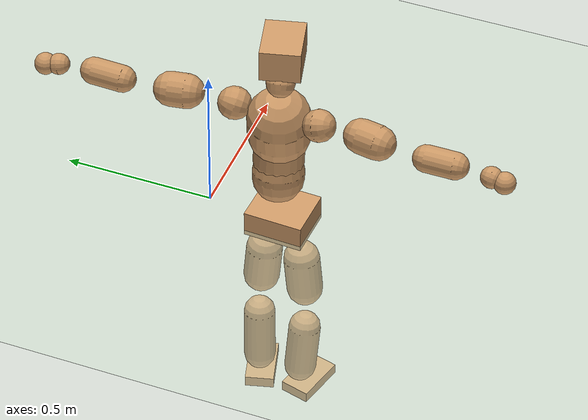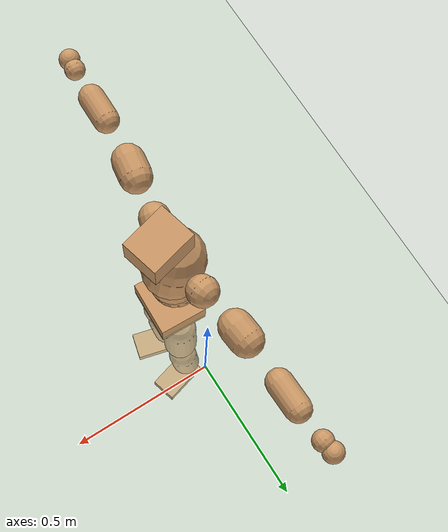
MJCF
<mujoco model="humanoid">
  <compiler coordinate="local" angle="radian"/>
  <default>
    <joint damping="0.0" armature="0.01" stiffness="0.0" limited="true"/>
    <geom conaffinity="1" condim="3" contype="7" margin="0.001" rgba="0.8 0.6 .4 1"/>
  </default>
  <asset>
    <texture type="skybox" builtin="gradient" rgb1=".4 .5 .6" rgb2="0 0 0" width="100" height="100"/>
    <texture builtin="flat" height="1278" mark="cross" markrgb="1 1 1" name="texgeom" random="0.01" rgb1="0.8 0.6 0.4" rgb2="0.8 0.6 0.4" type="cube" width="127"/>
    <texture builtin="checker" height="100" name="texplane" rgb1="0 0 0" rgb2="0.8 0.8 0.8" type="2d" width="100"/>
    <material name="MatPlane" reflectance="0.5" shininess="1" specular="1" texrepeat="60 60" texture="texplane"/>
    <material name="geom" texture="texgeom" texuniform="true"/>
  </asset>
  <worldbody>
    <light cutoff="100" diffuse="1 1 1" dir="-0 0 -1.3" directional="true" exponent="1" pos="0 0 1.3" specular=".1 .1 .1"/>
    <geom conaffinity="1" condim="3" name="floor" pos="0 0 0" rgba="0.8 0.9 0.8 1" size="100 100 .2" type="plane" material="MatPlane"/>
    <body name="Pelvis" pos="-0.0064 -0.2569 0.0334">
      <freejoint name="Pelvis"/>
      <geom type="box" contype="1" conaffinity="1" density="5359.375002" pos="-0.0103 0.0004 -0.0073" size="0.0847 0.0976 0.0445" quat="0.9998 0.0000 0.0000 -0.0188" name="Pelvis"/>
      <body name="L_Hip" pos="-0.0119 0.0546 -0.0775">
        <joint name="L_Hip_x" type="hinge" pos="0 0 0" axis="1 0 0" stiffness="1600" damping="160" armature="0.02" range="-180.0000 180.0000"/>
        <joint name="L_Hip_y" type="hinge" pos="0 0 0" axis="0 1 0" stiffness="1600" damping="160" armature="0.02" range="-180.0000 180.0000"/>
        <joint name="L_Hip_z" type="hinge" pos="0 0 0" axis="0 0 1" stiffness="1600" damping="160" armature="0.02" range="-180.0000 180.0000"/>
        <geom type="capsule" contype="1" conaffinity="1" density="2040.816327" size="0.0594" fromto="0.0040 0.0089 -0.0888 0.0100 0.0221 -0.2199" name="L_Hip"/>
        <body name="L_Knee" pos="0.014 0.0311 -0.3088">
          <joint name="L_Knee_x" type="hinge" pos="0 0 0" axis="1 0 0" stiffness="1600" damping="160" armature="0.02" range="-180.0000 180.0000"/>
          <joint name="L_Knee_y" type="hinge" pos="0 0 0" axis="0 1 0" stiffness="1600" damping="160" armature="0.02" range="-180.0000 180.0000"/>
          <joint name="L_Knee_z" type="hinge" pos="0 0 0" axis="0 0 1" stiffness="1600" damping="160" armature="0.02" range="-180.0000 180.0000"/>
          <geom type="capsule" contype="1" conaffinity="1" density="1234.567901" size="0.0522" fromto="-0.0082 -0.0034 -0.0817 -0.0260 -0.0108 -0.2605" name="L_Knee"/>
          <body name="L_Ankle" pos="-0.0342 -0.0142 -0.3422">
            <joint name="L_Ankle_x" type="hinge" pos="0 0 0" axis="1 0 0" stiffness="1600" damping="160" armature="0.02" range="-180.0000 180.0000"/>
            <joint name="L_Ankle_y" type="hinge" pos="0 0 0" axis="0 1 0" stiffness="1600" damping="160" armature="0.02" range="-180.0000 180.0000"/>
            <joint name="L_Ankle_z" type="hinge" pos="0 0 0" axis="0 0 1" stiffness="1600" damping="160" armature="0.02" range="-180.0000 180.0000"/>
            <geom type="box" contype="1" conaffinity="1" density="999.999961" pos="0.0560 0.0156 -0.0257" size="0.0847 0.0482 0.0195" quat="0.9908 0.0000 0.0000 0.1353" name="L_Ankle"/>
            <body name="L_Toe" pos="0.1121 0.0312 -0.0514">
              <joint name="L_Toe_x" type="hinge" pos="0 0 0" axis="1 0 0" stiffness="1000" damping="100" armature="0.02" range="-180.0000 180.0000"/>
              <joint name="L_Toe_y" type="hinge" pos="0 0 0" axis="0 1 0" stiffness="1000" damping="100" armature="0.02" range="-180.0000 180.0000"/>
              <joint name="L_Toe_z" type="hinge" pos="0 0 0" axis="0 0 1" stiffness="1000" damping="100" armature="0.02" range="-180.0000 180.0000"/>
              <geom type="box" contype="1" conaffinity="1" density="8534915.479226" pos="0.0000 0.0000 0.0246" size="0.001 0.0024 0.0009" quat="0.9900 0.0000 0.0000 0.1411" name="L_Toe"/>
            </body>
          </body>
        </body>
      </body>
      <body name="R_Hip" pos="-0.0067 -0.0559 -0.0855">
        <joint name="R_Hip_x" type="hinge" pos="0 0 0" axis="1 0 0" stiffness="1600" damping="160" armature="0.02" range="-180.0000 180.0000"/>
        <joint name="R_Hip_y" type="hinge" pos="0 0 0" axis="0 1 0" stiffness="1600" damping="160" armature="0.02" range="-180.0000 180.0000"/>
        <joint name="R_Hip_z" type="hinge" pos="0 0 0" axis="0 0 1" stiffness="1600" damping="160" armature="0.02" range="-180.0000 180.0000"/>
        <geom type="capsule" contype="1" conaffinity="1" density="2040.816327" size="0.059" fromto="0.0005 -0.0082 -0.0886 0.0013 -0.0202 -0.2185" name="R_Hip"/>
        <body name="R_Knee" pos="0.0018 -0.0284 -0.3071">
          <joint name="R_Knee_x" type="hinge" pos="0 0 0" axis="1 0 0" stiffness="1600" damping="160" armature="0.02" range="-180.0000 180.0000"/>
          <joint name="R_Knee_y" type="hinge" pos="0 0 0" axis="0 1 0" stiffness="1600" damping="160" armature="0.02" range="-180.0000 180.0000"/>
          <joint name="R_Knee_z" type="hinge" pos="0 0 0" axis="0 0 1" stiffness="1600" damping="160" armature="0.02" range="-180.0000 180.0000"/>
          <geom type="capsule" contype="1" conaffinity="1" density="1234.567901" size="0.0525" fromto="-0.0079 0.0041 -0.0820 -0.0242 0.0126 -0.2519" name="R_Knee"/>
          <body name="R_Ankle" pos="-0.0321 0.0167 -0.334">
            <joint name="R_Ankle_x" type="hinge" pos="0 0 0" axis="1 0 0" stiffness="1600" damping="160" armature="0.02" range="-180.0000 180.0000"/>
            <joint name="R_Ankle_y" type="hinge" pos="0 0 0" axis="0 1 0" stiffness="1600" damping="160" armature="0.02" range="-180.0000 180.0000"/>
            <joint name="R_Ankle_z" type="hinge" pos="0 0 0" axis="0 0 1" stiffness="1600" damping="160" armature="0.02" range="-180.0000 180.0000"/>
            <geom type="box" contype="1" conaffinity="1" density="999.999932" pos="0.0600 -0.0152 -0.0248" size="0.084 0.0502 0.0191" quat="0.9923 0.0000 0.0000 -0.1241" name="R_Ankle"/>
            <body name="R_Toe" pos="0.1199 -0.0305 -0.0497">
              <joint name="R_Toe_x" type="hinge" pos="0 0 0" axis="1 0 0" stiffness="1000" damping="100" armature="0.02" range="-180.0000 180.0000"/>
              <joint name="R_Toe_y" type="hinge" pos="0 0 0" axis="0 1 0" stiffness="1000" damping="100" armature="0.02" range="-180.0000 180.0000"/>
              <joint name="R_Toe_z" type="hinge" pos="0 0 0" axis="0 0 1" stiffness="1000" damping="100" armature="0.02" range="-180.0000 180.0000"/>
              <geom type="box" contype="1" conaffinity="1" density="8101662.17668" pos="0.0000 0.0000 0.0257" size="0.001 0.0025 0.001" quat="0.9934 0.0000 0.0000 -0.1144" name="R_Toe"/>
            </body>
          </body>
        </body>
      </body>
      <body name="Torso" pos="-0.0435 0.0036 0.1195">
        <joint name="Torso_x" type="hinge" pos="0 0 0" axis="1 0 0" stiffness="2000" damping="200" armature="0.02" range="-180.0000 180.0000"/>
        <joint name="Torso_y" type="hinge" pos="0 0 0" axis="0 1 0" stiffness="2000" damping="200" armature="0.02" range="-180.0000 180.0000"/>
        <joint name="Torso_z" type="hinge" pos="0 0 0" axis="0 0 1" stiffness="2000" damping="200" armature="0.02" range="-180.0000 180.0000"/>
        <geom type="capsule" contype="1" conaffinity="1" density="2040.816327" size="0.0839" fromto="0.0135 0.0038 0.0827 0.0098 0.0028 0.0600" name="Torso"/>
        <body name="Spine" pos="0.0233 0.0066 0.1427">
          <joint name="Spine_x" type="hinge" pos="0 0 0" axis="1 0 0" stiffness="2000" damping="200" armature="0.02" range="-180.0000 180.0000"/>
          <joint name="Spine_y" type="hinge" pos="0 0 0" axis="0 1 0" stiffness="2000" damping="200" armature="0.02" range="-180.0000 180.0000"/>
          <joint name="Spine_z" type="hinge" pos="0 0 0" axis="0 0 1" stiffness="2000" damping="200" armature="0.02" range="-180.0000 180.0000"/>
          <geom type="capsule" contype="1" conaffinity="1" density="2040.816327" size="0.0821" fromto="0.0075 -0.0005 0.0818 -0.0022 0.0001 -0.0239" name="Spine"/>
          <body name="Chest" pos="0.0053 -0.0004 0.0579">
            <joint name="Chest_x" type="hinge" pos="0 0 0" axis="1 0 0" stiffness="2000" damping="200" armature="0.02" range="-180.0000 180.0000"/>
            <joint name="Chest_y" type="hinge" pos="0 0 0" axis="0 1 0" stiffness="2000" damping="200" armature="0.02" range="-180.0000 180.0000"/>
            <joint name="Chest_z" type="hinge" pos="0 0 0" axis="0 0 1" stiffness="2000" damping="200" armature="0.02" range="-180.0000 180.0000"/>
            <geom type="capsule" contype="1" conaffinity="1" density="2040.816327" size="0.1024" fromto="-0.0197 -0.0057 0.1003 -0.0070 -0.0020 0.0357" name="Chest"/>
            <body name="Neck" pos="-0.0358 -0.0126 0.1978">
              <joint name="Neck_x" type="hinge" pos="0 0 0" axis="1 0 0" stiffness="1000" damping="100" armature="0.02" range="-180.0000 180.0000"/>
              <joint name="Neck_y" type="hinge" pos="0 0 0" axis="0 1 0" stiffness="1000" damping="100" armature="0.02" range="-180.0000 180.0000"/>
              <joint name="Neck_z" type="hinge" pos="0 0 0" axis="0 0 1" stiffness="1000" damping="100" armature="0.02" range="-180.0000 180.0000"/>
              <geom type="capsule" contype="1" conaffinity="1" density="1000" size="0.0459" fromto="0.0234 0.0053 0.0402 0.0244 0.0055 0.0419" name="Neck"/>
              <body name="Head" pos="0.0478 0.0108 0.0821">
                <joint name="Head_x" type="hinge" pos="0 0 0" axis="1 0 0" stiffness="1000" damping="100" armature="0.02" range="-180.0000 180.0000"/>
                <joint name="Head_y" type="hinge" pos="0 0 0" axis="0 1 0" stiffness="1000" damping="100" armature="0.02" range="-180.0000 180.0000"/>
                <joint name="Head_z" type="hinge" pos="0 0 0" axis="0 0 1" stiffness="1000" damping="100" armature="0.02" range="-180.0000 180.0000"/>
                <geom type="box" contype="1" conaffinity="1" density="2249.999957" pos="0.0249 0.0064 0.0421" size="0.0813 0.0643 0.0532" quat="0.9921 0.0000 0.0000 0.1257" name="Head"/>
              </body>
            </body>
            <body name="L_Thorax" pos="-0.0188 0.0728 0.1068">
              <joint name="L_Thorax_x" type="hinge" pos="0 0 0" axis="1 0 0" stiffness="1000" damping="100" armature="0.02" range="-180.0000 180.0000"/>
              <joint name="L_Thorax_y" type="hinge" pos="0 0 0" axis="0 1 0" stiffness="1000" damping="100" armature="0.02" range="-180.0000 180.0000"/>
              <joint name="L_Thorax_z" type="hinge" pos="0 0 0" axis="0 0 1" stiffness="1000" damping="100" armature="0.02" range="-180.0000 180.0000"/>
              <geom type="capsule" contype="1" conaffinity="1" density="1000" size="0.0531" fromto="-0.0114 0.0639 0.0207 -0.0118 0.0658 0.0213" name="L_Thorax"/>
              <body name="L_Shoulder" pos="-0.0232 0.1298 0.042">
                <joint name="L_Shoulder_x" type="hinge" pos="0 0 0" axis="1 0 0" stiffness="1000" damping="100" armature="0.02" range="-720.0000 720.0000"/>
                <joint name="L_Shoulder_y" type="hinge" pos="0 0 0" axis="0 1 0" stiffness="1000" damping="100" armature="0.02" range="-720.0000 720.0000"/>
                <joint name="L_Shoulder_z" type="hinge" pos="0 0 0" axis="0 0 1" stiffness="1000" damping="100" armature="0.02" range="-720.0000 720.0000"/>
                <geom type="capsule" contype="1" conaffinity="1" density="1000" size="0.0555" fromto="-0.0094 0.0849 -0.0038 -0.0152 0.1372 -0.0061" name="L_Shoulder"/>
                <body name="L_Elbow" pos="-0.0246 0.2221 -0.0099">
                  <joint name="L_Elbow_x" type="hinge" pos="0 0 0" axis="1 0 0" stiffness="1000" damping="100" armature="0.02" range="-720.0000 720.0000"/>
                  <joint name="L_Elbow_y" type="hinge" pos="0 0 0" axis="0 1 0" stiffness="1000" damping="100" armature="0.02" range="-720.0000 720.0000"/>
                  <joint name="L_Elbow_z" type="hinge" pos="0 0 0" axis="0 0 1" stiffness="1000" damping="100" armature="0.02" range="-720.0000 720.0000"/>
                  <geom type="capsule" contype="1" conaffinity="1" density="1000" size="0.0435" fromto="-0.0016 0.0734 0.0039 -0.0036 0.1695 0.0090" name="L_Elbow"/>
                  <body name="L_Wrist" pos="-0.0051 0.2429 0.013">
                    <joint name="L_Wrist_x" type="hinge" pos="0 0 0" axis="1 0 0" stiffness="600" damping="60" armature="0.02" range="-180.0000 180.0000"/>
                    <joint name="L_Wrist_y" type="hinge" pos="0 0 0" axis="0 1 0" stiffness="600" damping="60" armature="0.02" range="-180.0000 180.0000"/>
                    <joint name="L_Wrist_z" type="hinge" pos="0 0 0" axis="0 0 1" stiffness="600" damping="60" armature="0.02" range="-180.0000 180.0000"/>
                    <geom type="capsule" contype="1" conaffinity="1" density="1000" size="0.0341" fromto="-0.0073 0.0417 -0.0052 -0.0076 0.0437 -0.0055" name="L_Wrist"/>
                    <body name="L_Hand" pos="-0.0149 0.0854 -0.0107">
                      <joint name="L_Hand_x" type="hinge" pos="0 0 0" axis="1 0 0" stiffness="600" damping="60" armature="0.02" range="-180.0000 180.0000"/>
                      <joint name="L_Hand_y" type="hinge" pos="0 0 0" axis="0 1 0" stiffness="600" damping="60" armature="0.02" range="-180.0000 180.0000"/>
                      <joint name="L_Hand_z" type="hinge" pos="0 0 0" axis="0 0 1" stiffness="600" damping="60" armature="0.02" range="-180.0000 180.0000"/>
                      <geom type="sphere" contype="1" conaffinity="1" density="1000" size="0.0352" pos="0.0000 0.0000 0.0000" name="L_Hand"/>
                    </body>
                  </body>
                </body>
              </body>
            </body>
            <body name="R_Thorax" pos="-0.0256 -0.0836 0.1034">
              <joint name="R_Thorax_x" type="hinge" pos="0 0 0" axis="1 0 0" stiffness="1000" damping="100" armature="0.02" range="-180.0000 180.0000"/>
              <joint name="R_Thorax_y" type="hinge" pos="0 0 0" axis="0 1 0" stiffness="1000" damping="100" armature="0.02" range="-180.0000 180.0000"/>
              <joint name="R_Thorax_z" type="hinge" pos="0 0 0" axis="0 0 1" stiffness="1000" damping="100" armature="0.02" range="-180.0000 180.0000"/>
              <geom type="capsule" contype="1" conaffinity="1" density="1000" size="0.0522" fromto="-0.0062 -0.0576 0.0203 -0.0064 -0.0595 0.0210" name="R_Thorax"/>
              <body name="R_Shoulder" pos="-0.0127 -0.1171 0.0413">
                <joint name="R_Shoulder_x" type="hinge" pos="0 0 0" axis="1 0 0" stiffness="1000" damping="100" armature="0.02" range="-720.0000 720.0000"/>
                <joint name="R_Shoulder_y" type="hinge" pos="0 0 0" axis="0 1 0" stiffness="1000" damping="100" armature="0.02" range="-720.0000 720.0000"/>
                <joint name="R_Shoulder_z" type="hinge" pos="0 0 0" axis="0 0 1" stiffness="1000" damping="100" armature="0.02" range="-720.0000 720.0000"/>
                <geom type="capsule" contype="1" conaffinity="1" density="1000" size="0.055" fromto="-0.0125 -0.0841 -0.0013 -0.0216 -0.1445 -0.0022" name="R_Shoulder"/>
                <body name="R_Elbow" pos="-0.0341 -0.2286 -0.0035">
                  <joint name="R_Elbow_x" type="hinge" pos="0 0 0" axis="1 0 0" stiffness="1000" damping="100" armature="0.02" range="-720.0000 720.0000"/>
                  <joint name="R_Elbow_y" type="hinge" pos="0 0 0" axis="0 1 0" stiffness="1000" damping="100" armature="0.02" range="-720.0000 720.0000"/>
                  <joint name="R_Elbow_z" type="hinge" pos="0 0 0" axis="0 0 1" stiffness="1000" damping="100" armature="0.02" range="-720.0000 720.0000"/>
                  <geom type="capsule" contype="1" conaffinity="1" density="1000" size="0.0433" fromto="-0.0007 -0.0733 0.0009 -0.0016 -0.1658 0.0021" name="R_Elbow"/>
                  <body name="R_Wrist" pos="-0.0022 -0.2392 0.003">
                    <joint name="R_Wrist_x" type="hinge" pos="0 0 0" axis="1 0 0" stiffness="600" damping="60" armature="0.02" range="-180.0000 180.0000"/>
                    <joint name="R_Wrist_y" type="hinge" pos="0 0 0" axis="0 1 0" stiffness="600" damping="60" armature="0.02" range="-180.0000 180.0000"/>
                    <joint name="R_Wrist_z" type="hinge" pos="0 0 0" axis="0 0 1" stiffness="600" damping="60" armature="0.02" range="-180.0000 180.0000"/>
                    <geom type="capsule" contype="1" conaffinity="1" density="1000" size="0.0342" fromto="-0.0048 -0.0420 -0.0043 -0.0050 -0.0440 -0.0045" name="R_Wrist"/>
                    <body name="R_Hand" pos="-0.0098 -0.086 -0.0087">
                      <joint name="R_Hand_x" type="hinge" pos="0 0 0" axis="1 0 0" stiffness="600" damping="60" armature="0.02" range="-180.0000 180.0000"/>
                      <joint name="R_Hand_y" type="hinge" pos="0 0 0" axis="0 1 0" stiffness="600" damping="60" armature="0.02" range="-180.0000 180.0000"/>
                      <joint name="R_Hand_z" type="hinge" pos="0 0 0" axis="0 0 1" stiffness="600" damping="60" armature="0.02" range="-180.0000 180.0000"/>
                      <geom type="sphere" contype="1" conaffinity="1" density="1000" size="0.0351" pos="0.0000 0.0000 0.0000" name="R_Hand"/>
                    </body>
                  </body>
                </body>
              </body>
            </body>
          </body>
        </body>
      </body>
    </body>
  </worldbody>
  <actuator>
    <motor name="L_Hip_x" joint="L_Hip_x" gear="500"/>
    <motor name="L_Hip_y" joint="L_Hip_y" gear="500"/>
    <motor name="L_Hip_z" joint="L_Hip_z" gear="500"/>
    <motor name="L_Knee_x" joint="L_Knee_x" gear="500"/>
    <motor name="L_Knee_y" joint="L_Knee_y" gear="500"/>
    <motor name="L_Knee_z" joint="L_Knee_z" gear="500"/>
    <motor name="L_Ankle_x" joint="L_Ankle_x" gear="500"/>
    <motor name="L_Ankle_y" joint="L_Ankle_y" gear="500"/>
    <motor name="L_Ankle_z" joint="L_Ankle_z" gear="500"/>
    <motor name="L_Toe_x" joint="L_Toe_x" gear="500"/>
    <motor name="L_Toe_y" joint="L_Toe_y" gear="500"/>
    <motor name="L_Toe_z" joint="L_Toe_z" gear="500"/>
    <motor name="R_Hip_x" joint="R_Hip_x" gear="500"/>
    <motor name="R_Hip_y" joint="R_Hip_y" gear="500"/>
    <motor name="R_Hip_z" joint="R_Hip_z" gear="500"/>
    <motor name="R_Knee_x" joint="R_Knee_x" gear="500"/>
    <motor name="R_Knee_y" joint="R_Knee_y" gear="500"/>
    <motor name="R_Knee_z" joint="R_Knee_z" gear="500"/>
    <motor name="R_Ankle_x" joint="R_Ankle_x" gear="500"/>
    <motor name="R_Ankle_y" joint="R_Ankle_y" gear="500"/>
    <motor name="R_Ankle_z" joint="R_Ankle_z" gear="500"/>
    <motor name="R_Toe_x" joint="R_Toe_x" gear="500"/>
    <motor name="R_Toe_y" joint="R_Toe_y" gear="500"/>
    <motor name="R_Toe_z" joint="R_Toe_z" gear="500"/>
    <motor name="Torso_x" joint="Torso_x" gear="500"/>
    <motor name="Torso_y" joint="Torso_y" gear="500"/>
    <motor name="Torso_z" joint="Torso_z" gear="500"/>
    <motor name="Spine_x" joint="Spine_x" gear="500"/>
    <motor name="Spine_y" joint="Spine_y" gear="500"/>
    <motor name="Spine_z" joint="Spine_z" gear="500"/>
    <motor name="Chest_x" joint="Chest_x" gear="500"/>
    <motor name="Chest_y" joint="Chest_y" gear="500"/>
    <motor name="Chest_z" joint="Chest_z" gear="500"/>
    <motor name="Neck_x" joint="Neck_x" gear="500"/>
    <motor name="Neck_y" joint="Neck_y" gear="500"/>
    <motor name="Neck_z" joint="Neck_z" gear="500"/>
    <motor name="Head_x" joint="Head_x" gear="500"/>
    <motor name="Head_y" joint="Head_y" gear="500"/>
    <motor name="Head_z" joint="Head_z" gear="500"/>
    <motor name="L_Thorax_x" joint="L_Thorax_x" gear="500"/>
    <motor name="L_Thorax_y" joint="L_Thorax_y" gear="500"/>
    <motor name="L_Thorax_z" joint="L_Thorax_z" gear="500"/>
    <motor name="L_Shoulder_x" joint="L_Shoulder_x" gear="500"/>
    <motor name="L_Shoulder_y" joint="L_Shoulder_y" gear="500"/>
    <motor name="L_Shoulder_z" joint="L_Shoulder_z" gear="500"/>
    <motor name="L_Elbow_x" joint="L_Elbow_x" gear="500"/>
    <motor name="L_Elbow_y" joint="L_Elbow_y" gear="500"/>
    <motor name="L_Elbow_z" joint="L_Elbow_z" gear="500"/>
    <motor name="L_Wrist_x" joint="L_Wrist_x" gear="500"/>
    <motor name="L_Wrist_y" joint="L_Wrist_y" gear="500"/>
    <motor name="L_Wrist_z" joint="L_Wrist_z" gear="500"/>
    <motor name="L_Hand_x" joint="L_Hand_x" gear="500"/>
    <motor name="L_Hand_y" joint="L_Hand_y" gear="500"/>
    <motor name="L_Hand_z" joint="L_Hand_z" gear="500"/>
    <motor name="R_Thorax_x" joint="R_Thorax_x" gear="500"/>
    <motor name="R_Thorax_y" joint="R_Thorax_y" gear="500"/>
    <motor name="R_Thorax_z" joint="R_Thorax_z" gear="500"/>
    <motor name="R_Shoulder_x" joint="R_Shoulder_x" gear="500"/>
    <motor name="R_Shoulder_y" joint="R_Shoulder_y" gear="500"/>
    <motor name="R_Shoulder_z" joint="R_Shoulder_z" gear="500"/>
    <motor name="R_Elbow_x" joint="R_Elbow_x" gear="500"/>
    <motor name="R_Elbow_y" joint="R_Elbow_y" gear="500"/>
    <motor name="R_Elbow_z" joint="R_Elbow_z" gear="500"/>
    <motor name="R_Wrist_x" joint="R_Wrist_x" gear="500"/>
    <motor name="R_Wrist_y" joint="R_Wrist_y" gear="500"/>
    <motor name="R_Wrist_z" joint="R_Wrist_z" gear="500"/>
    <motor name="R_Hand_x" joint="R_Hand_x" gear="500"/>
    <motor name="R_Hand_y" joint="R_Hand_y" gear="500"/>
    <motor name="R_Hand_z" joint="R_Hand_z" gear="500"/>
  </actuator>
  <contact>
    <exclude body1="Torso" body2="Chest"/>
    <exclude body1="Head" body2="Chest"/>
    <exclude body1="R_Knee" body2="R_Toe"/>
    <exclude body1="R_Knee" body2="L_Ankle"/>
    <exclude body1="R_Knee" body2="L_Toe"/>
    <exclude body1="L_Knee" body2="L_Toe"/>
    <exclude body1="L_Knee" body2="R_Ankle"/>
    <exclude body1="L_Knee" body2="R_Toe"/>
    <exclude body1="L_Shoulder" body2="Chest"/>
    <exclude body1="R_Shoulder" body2="Chest"/>
  </contact>
  <sensor/>
  <size njmax="700" nconmax="700"/>
</mujoco>
